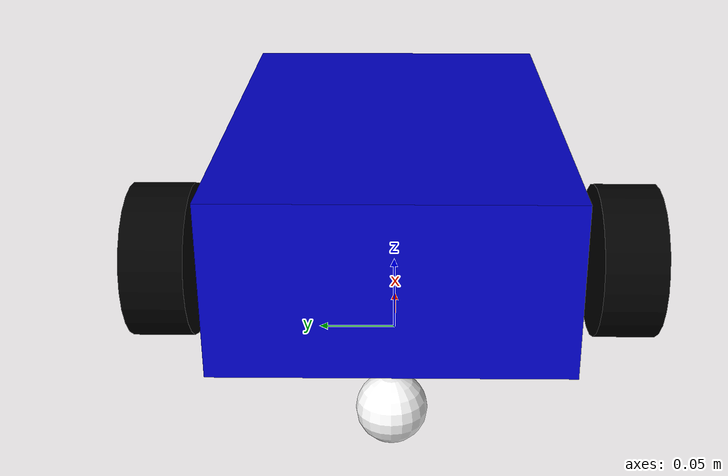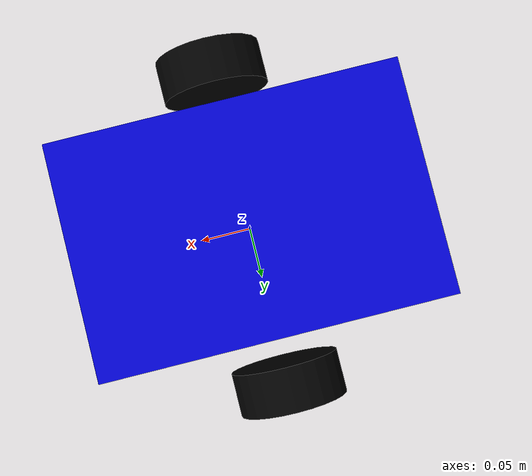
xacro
<?xml version="1.0"?>
<robot xmlns:xacro="http://www.ros.org/wiki/xacro" name="diff_drive_robot">

  <!-- Robot parameters -->
  <xacro:property name="wheel_radius" value="0.05035"/>
  <xacro:property name="wheel_width" value="0.04"/>
  <xacro:property name="wheel_separation" value="0.3"/>
  <xacro:property name="base_length" value="0.3"/>
  <xacro:property name="base_width" value="0.2"/>
  <xacro:property name="base_height" value="0.1"/>
  <xacro:property name="caster_radius" value="0.02"/>

  <!-- Materials -->
  <material name="blue">
    <color rgba="0.0 0.0 0.8 1.0"/>
  </material>
  <material name="black">
    <color rgba="0.0 0.0 0.0 1.0"/>
  </material>
  <material name="white">
    <color rgba="1.0 1.0 1.0 1.0"/>
  </material>

  <!-- Base link -->
  <link name="base_link">
    <visual>
      <geometry>
        <box size="${base_length} ${base_width} ${base_height}"/>
      </geometry>
      <origin xyz="0 0 ${base_height/2 + wheel_radius}" rpy="0 0 0"/>
      <material name="blue"/>
    </visual>
    <collision>
      <geometry>
        <box size="${base_length} ${base_width} ${base_height}"/>
      </geometry>
      <origin xyz="0 0 ${base_height/2 + wheel_radius}" rpy="0 0 0"/>
    </collision>
    <inertial>
      <mass value="5.0"/>
      <origin xyz="0 0 ${base_height/2 + wheel_radius}" rpy="0 0 0"/>
      <inertia ixx="0.05" ixy="0" ixz="0" iyy="0.05" iyz="0" izz="0.05"/>
    </inertial>
  </link>

  <!-- Base footprint (on the ground) -->
  <link name="base_footprint"/>
  <joint name="base_footprint_joint" type="fixed">
    <parent link="base_footprint"/>
    <child link="base_link"/>
    <origin xyz="0 0 0" rpy="0 0 0"/>
  </joint>

  <!-- Left wheel -->
  <link name="left_wheel_link">
    <visual>
      <geometry>
        <cylinder radius="${wheel_radius}" length="${wheel_width}"/>
      </geometry>
      <origin xyz="0 0 0" rpy="0 0 0"/>
      <material name="black"/>
    </visual>
    <collision>
      <geometry>
        <cylinder radius="${wheel_radius}" length="${wheel_width}"/>
      </geometry>
      <origin xyz="0 0 0" rpy="0 0 0"/>
    </collision>
    <inertial>
      <mass value="0.5"/>
      <origin xyz="0 0 0" rpy="0 0 0"/>
      <inertia ixx="0.001" ixy="0" ixz="0" iyy="0.001" iyz="0" izz="0.001"/>
    </inertial>
  </link>

  <joint name="left_wheel_joint" type="continuous">
    <parent link="base_link"/>
    <child link="left_wheel_link"/>
    <origin xyz="0 ${wheel_separation/2} ${wheel_radius}" rpy="${-pi/2} 0 0"/>
    <axis xyz="0 0 1"/>
  </joint>

  <!-- Right wheel -->
  <link name="right_wheel_link">
    <visual>
      <geometry>
        <cylinder radius="${wheel_radius}" length="${wheel_width}"/>
      </geometry>
      <origin xyz="0 0 0" rpy="0 0 0"/>
      <material name="black"/>
    </visual>
    <collision>
      <geometry>
        <cylinder radius="${wheel_radius}" length="${wheel_width}"/>
      </geometry>
      <origin xyz="0 0 0" rpy="0 0 0"/>
    </collision>
    <inertial>
      <mass value="0.5"/>
      <origin xyz="0 0 0" rpy="0 0 0"/>
      <inertia ixx="0.001" ixy="0" ixz="0" iyy="0.001" iyz="0" izz="0.001"/>
    </inertial>
  </link>

  <joint name="right_wheel_joint" type="continuous">
    <parent link="base_link"/>
    <child link="right_wheel_link"/>
    <origin xyz="0 ${-wheel_separation/2} ${wheel_radius}" rpy="${-pi/2} 0 0"/>
    <axis xyz="0 0 -1"/>
  </joint>

  <!-- Front caster wheel (for stability) -->
  <link name="front_caster_link">
    <visual>
      <geometry>
        <sphere radius="${caster_radius}"/>
      </geometry>
      <origin xyz="0 0 0" rpy="0 0 0"/>
      <material name="white"/>
    </visual>
    <collision>
      <geometry>
        <sphere radius="${caster_radius}"/>
      </geometry>
      <origin xyz="0 0 0" rpy="0 0 0"/>
    </collision>
    <inertial>
      <mass value="0.1"/>
      <origin xyz="0 0 0" rpy="0 0 0"/>
      <inertia ixx="0.0001" ixy="0" ixz="0" iyy="0.0001" iyz="0" izz="0.0001"/>
    </inertial>
  </link>

  <joint name="front_caster_joint" type="fixed">
    <parent link="base_link"/>
    <child link="front_caster_link"/>
    <origin xyz="${base_length/2 - caster_radius} 0 ${caster_radius}" rpy="0 0 0"/>
  </joint>

  <!-- Rear caster wheel (for stability) -->
  <link name="rear_caster_link">
    <visual>
      <geometry>
        <sphere radius="${caster_radius}"/>
      </geometry>
      <origin xyz="0 0 0" rpy="0 0 0"/>
      <material name="white"/>
    </visual>
    <collision>
      <geometry>
        <sphere radius="${caster_radius}"/>
      </geometry>
      <origin xyz="0 0 0" rpy="0 0 0"/>
    </collision>
    <inertial>
      <mass value="0.1"/>
      <origin xyz="0 0 0" rpy="0 0 0"/>
      <inertia ixx="0.0001" ixy="0" ixz="0" iyy="0.0001" iyz="0" izz="0.0001"/>
    </inertial>
  </link>

  <joint name="rear_caster_joint" type="fixed">
    <parent link="base_link"/>
    <child link="rear_caster_link"/>
    <origin xyz="${-base_length/2 + caster_radius} 0 ${caster_radius}" rpy="0 0 0"/>
  </joint>

  <!-- ros2_control hardware interface configuration -->
  <ros2_control name="diff_drive_hw" type="system">
    <hardware>
      <plugin>ddsm115_hardware::DDSM115HardwareInterface</plugin>
      <param name="serialport">/dev/ttyUSB0</param>
    </hardware>

    <joint name="left_wheel_joint">
      <param name="motor_id">1</param>
      <param name="mode">VELOCITY_LOOP</param>
      <param name="invert">false</param>
      <command_interface name="velocity"/>
      <state_interface name="position"/>
      <state_interface name="velocity"/>
    </joint>

    <joint name="right_wheel_joint">
      <param name="motor_id">2</param>
      <param name="mode">VELOCITY_LOOP</param>
      <param name="invert">true</param>
      <command_interface name="velocity"/>
      <state_interface name="position"/>
      <state_interface name="velocity"/>
    </joint>
  </ros2_control>

</robot>
